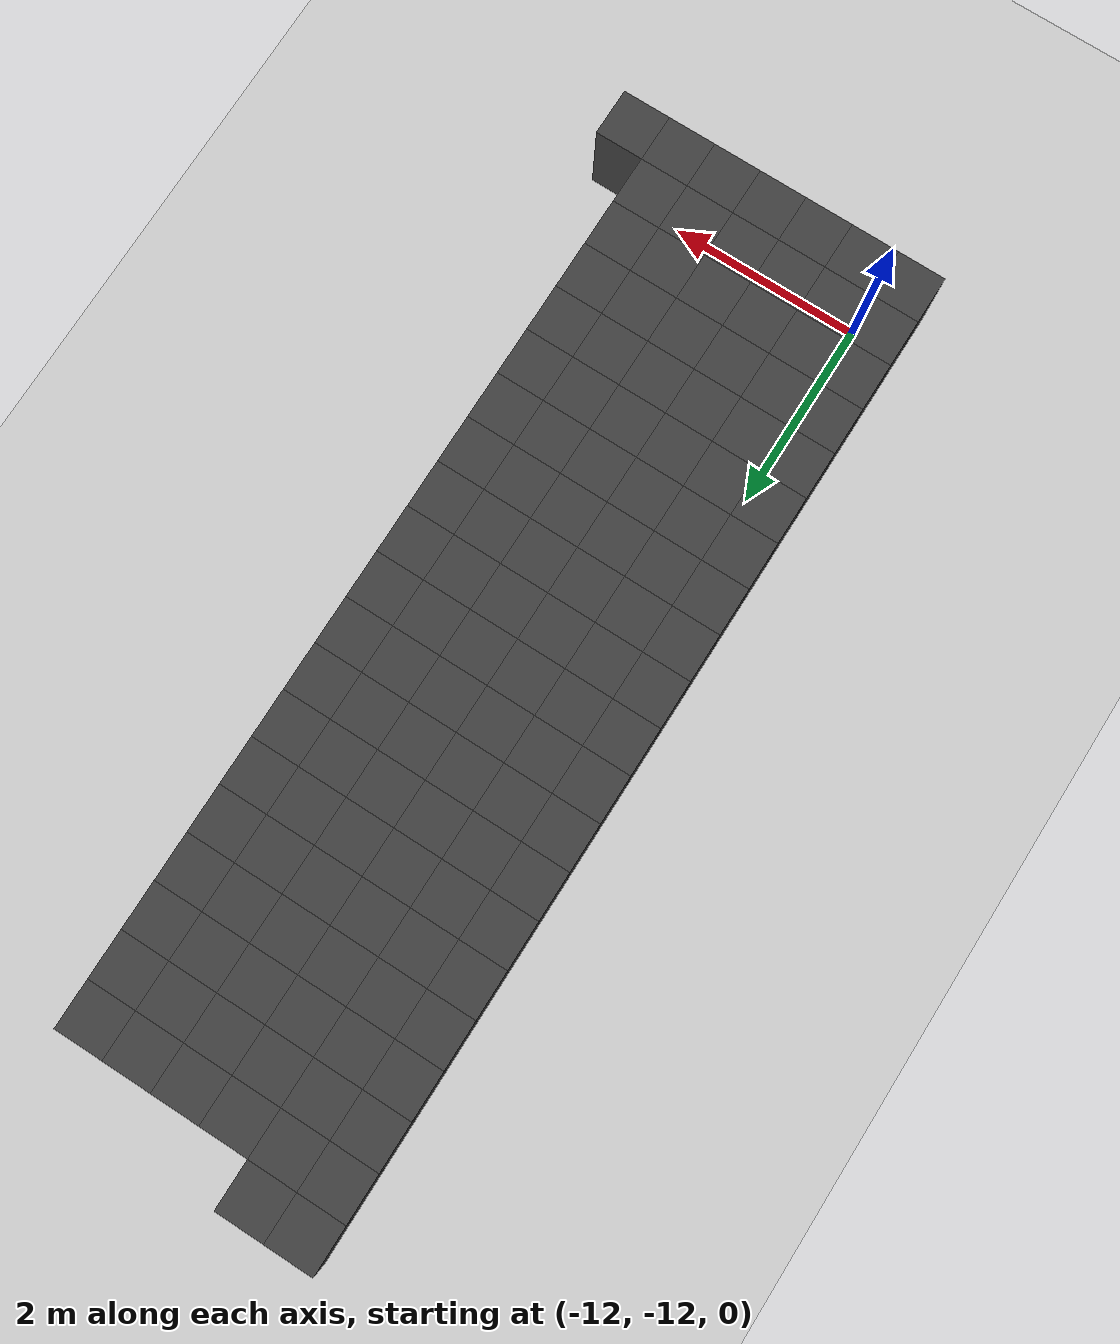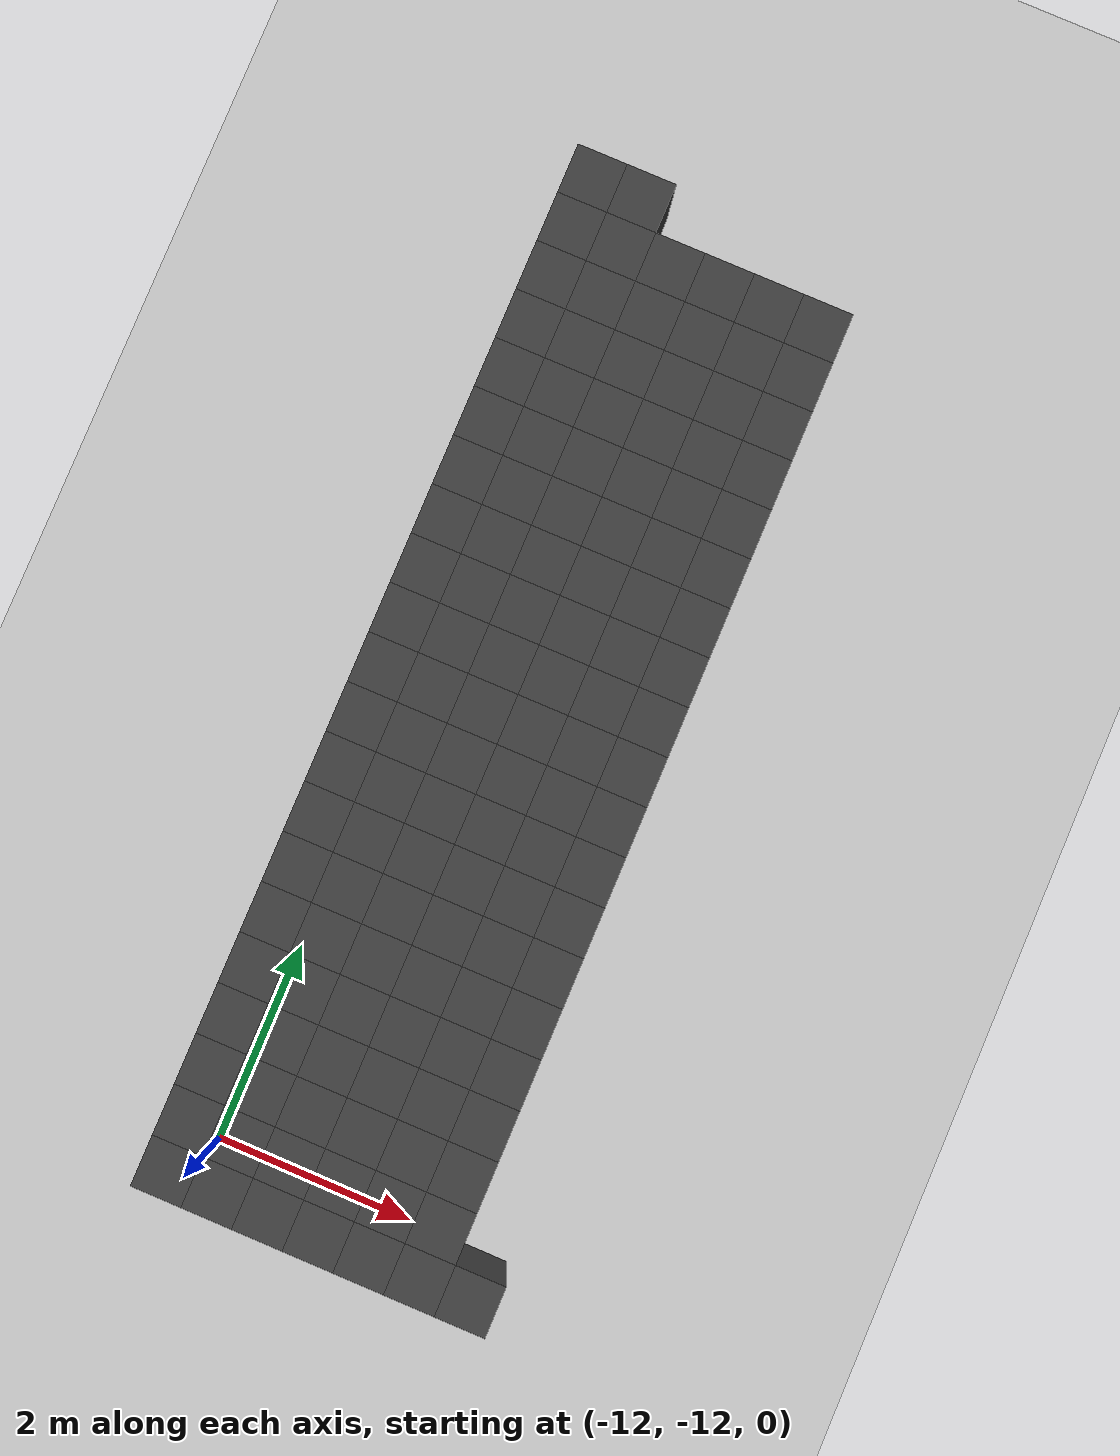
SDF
<sdf version="1.7">
 <world name="map_13364">
  <model name="ground_plane">
   <static>true</static>
   <link name="link">
    <collision name="collision">
     <geometry><plane><normal>0 0 1</normal><size>200 200</size></plane></geometry>
    </collision>
    <visual name="visual">
     <geometry><plane><normal>0 0 1</normal><size>200 200</size></plane></geometry>
     <material><ambient>0.8 0.8 0.8 1</ambient><diffuse>0.8 0.8 0.8 1</diffuse></material>
    </visual>
   </link>
  </model>
  <model name="maze_environment">
   <static>true</static>
   <link name="wall_1013">
    <pose>-12.250 -2.250 0.500 0 0 0</pose>
    <collision name="col"><geometry><box><size>0.5 0.5 1.0</size></box></geometry></collision>
    <visual name="vis">
     <geometry><box><size>0.5 0.5 1.0</size></box></geometry>
     <material><ambient>0.15 0.15 0.15 1</ambient><diffuse>0.25 0.25 0.25 1</diffuse></material>
    </visual>
   </link>
   <link name="wall_1014">
    <pose>-11.750 -2.250 0.500 0 0 0</pose>
    <collision name="col"><geometry><box><size>0.5 0.5 1.0</size></box></geometry></collision>
    <visual name="vis">
     <geometry><box><size>0.5 0.5 1.0</size></box></geometry>
     <material><ambient>0.15 0.15 0.15 1</ambient><diffuse>0.25 0.25 0.25 1</diffuse></material>
    </visual>
   </link>
   <link name="wall_1044">
    <pose>-12.250 -2.750 0.500 0 0 0</pose>
    <collision name="col"><geometry><box><size>0.5 0.5 1.0</size></box></geometry></collision>
    <visual name="vis">
     <geometry><box><size>0.5 0.5 1.0</size></box></geometry>
     <material><ambient>0.15 0.15 0.15 1</ambient><diffuse>0.25 0.25 0.25 1</diffuse></material>
    </visual>
   </link>
   <link name="wall_1045">
    <pose>-11.750 -2.750 0.500 0 0 0</pose>
    <collision name="col"><geometry><box><size>0.5 0.5 1.0</size></box></geometry></collision>
    <visual name="vis">
     <geometry><box><size>0.5 0.5 1.0</size></box></geometry>
     <material><ambient>0.15 0.15 0.15 1</ambient><diffuse>0.25 0.25 0.25 1</diffuse></material>
    </visual>
   </link>
   <link name="wall_1046">
    <pose>-11.250 -2.750 0.500 0 0 0</pose>
    <collision name="col"><geometry><box><size>0.5 0.5 1.0</size></box></geometry></collision>
    <visual name="vis">
     <geometry><box><size>0.5 0.5 1.0</size></box></geometry>
     <material><ambient>0.15 0.15 0.15 1</ambient><diffuse>0.25 0.25 0.25 1</diffuse></material>
    </visual>
   </link>
   <link name="wall_1047">
    <pose>-10.750 -2.750 0.500 0 0 0</pose>
    <collision name="col"><geometry><box><size>0.5 0.5 1.0</size></box></geometry></collision>
    <visual name="vis">
     <geometry><box><size>0.5 0.5 1.0</size></box></geometry>
     <material><ambient>0.15 0.15 0.15 1</ambient><diffuse>0.25 0.25 0.25 1</diffuse></material>
    </visual>
   </link>
   <link name="wall_1048">
    <pose>-10.250 -2.750 0.500 0 0 0</pose>
    <collision name="col"><geometry><box><size>0.5 0.5 1.0</size></box></geometry></collision>
    <visual name="vis">
     <geometry><box><size>0.5 0.5 1.0</size></box></geometry>
     <material><ambient>0.15 0.15 0.15 1</ambient><diffuse>0.25 0.25 0.25 1</diffuse></material>
    </visual>
   </link>
   <link name="wall_1049">
    <pose>-9.750 -2.750 0.500 0 0 0</pose>
    <collision name="col"><geometry><box><size>0.5 0.5 1.0</size></box></geometry></collision>
    <visual name="vis">
     <geometry><box><size>0.5 0.5 1.0</size></box></geometry>
     <material><ambient>0.15 0.15 0.15 1</ambient><diffuse>0.25 0.25 0.25 1</diffuse></material>
    </visual>
   </link>
   <link name="wall_1084">
    <pose>-12.250 -3.250 0.500 0 0 0</pose>
    <collision name="col"><geometry><box><size>0.5 0.5 1.0</size></box></geometry></collision>
    <visual name="vis">
     <geometry><box><size>0.5 0.5 1.0</size></box></geometry>
     <material><ambient>0.15 0.15 0.15 1</ambient><diffuse>0.25 0.25 0.25 1</diffuse></material>
    </visual>
   </link>
   <link name="wall_1085">
    <pose>-11.750 -3.250 0.500 0 0 0</pose>
    <collision name="col"><geometry><box><size>0.5 0.5 1.0</size></box></geometry></collision>
    <visual name="vis">
     <geometry><box><size>0.5 0.5 1.0</size></box></geometry>
     <material><ambient>0.15 0.15 0.15 1</ambient><diffuse>0.25 0.25 0.25 1</diffuse></material>
    </visual>
   </link>
   <link name="wall_1086">
    <pose>-11.250 -3.250 0.500 0 0 0</pose>
    <collision name="col"><geometry><box><size>0.5 0.5 1.0</size></box></geometry></collision>
    <visual name="vis">
     <geometry><box><size>0.5 0.5 1.0</size></box></geometry>
     <material><ambient>0.15 0.15 0.15 1</ambient><diffuse>0.25 0.25 0.25 1</diffuse></material>
    </visual>
   </link>
   <link name="wall_1087">
    <pose>-10.750 -3.250 0.500 0 0 0</pose>
    <collision name="col"><geometry><box><size>0.5 0.5 1.0</size></box></geometry></collision>
    <visual name="vis">
     <geometry><box><size>0.5 0.5 1.0</size></box></geometry>
     <material><ambient>0.15 0.15 0.15 1</ambient><diffuse>0.25 0.25 0.25 1</diffuse></material>
    </visual>
   </link>
   <link name="wall_1088">
    <pose>-10.250 -3.250 0.500 0 0 0</pose>
    <collision name="col"><geometry><box><size>0.5 0.5 1.0</size></box></geometry></collision>
    <visual name="vis">
     <geometry><box><size>0.5 0.5 1.0</size></box></geometry>
     <material><ambient>0.15 0.15 0.15 1</ambient><diffuse>0.25 0.25 0.25 1</diffuse></material>
    </visual>
   </link>
   <link name="wall_1089">
    <pose>-9.750 -3.250 0.500 0 0 0</pose>
    <collision name="col"><geometry><box><size>0.5 0.5 1.0</size></box></geometry></collision>
    <visual name="vis">
     <geometry><box><size>0.5 0.5 1.0</size></box></geometry>
     <material><ambient>0.15 0.15 0.15 1</ambient><diffuse>0.25 0.25 0.25 1</diffuse></material>
    </visual>
   </link>
   <link name="wall_1124">
    <pose>-12.250 -3.750 0.500 0 0 0</pose>
    <collision name="col"><geometry><box><size>0.5 0.5 1.0</size></box></geometry></collision>
    <visual name="vis">
     <geometry><box><size>0.5 0.5 1.0</size></box></geometry>
     <material><ambient>0.15 0.15 0.15 1</ambient><diffuse>0.25 0.25 0.25 1</diffuse></material>
    </visual>
   </link>
   <link name="wall_1125">
    <pose>-11.750 -3.750 0.500 0 0 0</pose>
    <collision name="col"><geometry><box><size>0.5 0.5 1.0</size></box></geometry></collision>
    <visual name="vis">
     <geometry><box><size>0.5 0.5 1.0</size></box></geometry>
     <material><ambient>0.15 0.15 0.15 1</ambient><diffuse>0.25 0.25 0.25 1</diffuse></material>
    </visual>
   </link>
   <link name="wall_1126">
    <pose>-11.250 -3.750 0.500 0 0 0</pose>
    <collision name="col"><geometry><box><size>0.5 0.5 1.0</size></box></geometry></collision>
    <visual name="vis">
     <geometry><box><size>0.5 0.5 1.0</size></box></geometry>
     <material><ambient>0.15 0.15 0.15 1</ambient><diffuse>0.25 0.25 0.25 1</diffuse></material>
    </visual>
   </link>
   <link name="wall_1127">
    <pose>-10.750 -3.750 0.500 0 0 0</pose>
    <collision name="col"><geometry><box><size>0.5 0.5 1.0</size></box></geometry></collision>
    <visual name="vis">
     <geometry><box><size>0.5 0.5 1.0</size></box></geometry>
     <material><ambient>0.15 0.15 0.15 1</ambient><diffuse>0.25 0.25 0.25 1</diffuse></material>
    </visual>
   </link>
   <link name="wall_1128">
    <pose>-10.250 -3.750 0.500 0 0 0</pose>
    <collision name="col"><geometry><box><size>0.5 0.5 1.0</size></box></geometry></collision>
    <visual name="vis">
     <geometry><box><size>0.5 0.5 1.0</size></box></geometry>
     <material><ambient>0.15 0.15 0.15 1</ambient><diffuse>0.25 0.25 0.25 1</diffuse></material>
    </visual>
   </link>
   <link name="wall_1129">
    <pose>-9.750 -3.750 0.500 0 0 0</pose>
    <collision name="col"><geometry><box><size>0.5 0.5 1.0</size></box></geometry></collision>
    <visual name="vis">
     <geometry><box><size>0.5 0.5 1.0</size></box></geometry>
     <material><ambient>0.15 0.15 0.15 1</ambient><diffuse>0.25 0.25 0.25 1</diffuse></material>
    </visual>
   </link>
   <link name="wall_1159">
    <pose>-12.250 -4.250 0.500 0 0 0</pose>
    <collision name="col"><geometry><box><size>0.5 0.5 1.0</size></box></geometry></collision>
    <visual name="vis">
     <geometry><box><size>0.5 0.5 1.0</size></box></geometry>
     <material><ambient>0.15 0.15 0.15 1</ambient><diffuse>0.25 0.25 0.25 1</diffuse></material>
    </visual>
   </link>
   <link name="wall_1160">
    <pose>-11.750 -4.250 0.500 0 0 0</pose>
    <collision name="col"><geometry><box><size>0.5 0.5 1.0</size></box></geometry></collision>
    <visual name="vis">
     <geometry><box><size>0.5 0.5 1.0</size></box></geometry>
     <material><ambient>0.15 0.15 0.15 1</ambient><diffuse>0.25 0.25 0.25 1</diffuse></material>
    </visual>
   </link>
   <link name="wall_1161">
    <pose>-11.250 -4.250 0.500 0 0 0</pose>
    <collision name="col"><geometry><box><size>0.5 0.5 1.0</size></box></geometry></collision>
    <visual name="vis">
     <geometry><box><size>0.5 0.5 1.0</size></box></geometry>
     <material><ambient>0.15 0.15 0.15 1</ambient><diffuse>0.25 0.25 0.25 1</diffuse></material>
    </visual>
   </link>
   <link name="wall_1162">
    <pose>-10.750 -4.250 0.500 0 0 0</pose>
    <collision name="col"><geometry><box><size>0.5 0.5 1.0</size></box></geometry></collision>
    <visual name="vis">
     <geometry><box><size>0.5 0.5 1.0</size></box></geometry>
     <material><ambient>0.15 0.15 0.15 1</ambient><diffuse>0.25 0.25 0.25 1</diffuse></material>
    </visual>
   </link>
   <link name="wall_1163">
    <pose>-10.250 -4.250 0.500 0 0 0</pose>
    <collision name="col"><geometry><box><size>0.5 0.5 1.0</size></box></geometry></collision>
    <visual name="vis">
     <geometry><box><size>0.5 0.5 1.0</size></box></geometry>
     <material><ambient>0.15 0.15 0.15 1</ambient><diffuse>0.25 0.25 0.25 1</diffuse></material>
    </visual>
   </link>
   <link name="wall_1164">
    <pose>-9.750 -4.250 0.500 0 0 0</pose>
    <collision name="col"><geometry><box><size>0.5 0.5 1.0</size></box></geometry></collision>
    <visual name="vis">
     <geometry><box><size>0.5 0.5 1.0</size></box></geometry>
     <material><ambient>0.15 0.15 0.15 1</ambient><diffuse>0.25 0.25 0.25 1</diffuse></material>
    </visual>
   </link>
   <link name="wall_1202">
    <pose>-12.250 -4.750 0.500 0 0 0</pose>
    <collision name="col"><geometry><box><size>0.5 0.5 1.0</size></box></geometry></collision>
    <visual name="vis">
     <geometry><box><size>0.5 0.5 1.0</size></box></geometry>
     <material><ambient>0.15 0.15 0.15 1</ambient><diffuse>0.25 0.25 0.25 1</diffuse></material>
    </visual>
   </link>
   <link name="wall_1203">
    <pose>-11.750 -4.750 0.500 0 0 0</pose>
    <collision name="col"><geometry><box><size>0.5 0.5 1.0</size></box></geometry></collision>
    <visual name="vis">
     <geometry><box><size>0.5 0.5 1.0</size></box></geometry>
     <material><ambient>0.15 0.15 0.15 1</ambient><diffuse>0.25 0.25 0.25 1</diffuse></material>
    </visual>
   </link>
   <link name="wall_1204">
    <pose>-11.250 -4.750 0.500 0 0 0</pose>
    <collision name="col"><geometry><box><size>0.5 0.5 1.0</size></box></geometry></collision>
    <visual name="vis">
     <geometry><box><size>0.5 0.5 1.0</size></box></geometry>
     <material><ambient>0.15 0.15 0.15 1</ambient><diffuse>0.25 0.25 0.25 1</diffuse></material>
    </visual>
   </link>
   <link name="wall_1205">
    <pose>-10.750 -4.750 0.500 0 0 0</pose>
    <collision name="col"><geometry><box><size>0.5 0.5 1.0</size></box></geometry></collision>
    <visual name="vis">
     <geometry><box><size>0.5 0.5 1.0</size></box></geometry>
     <material><ambient>0.15 0.15 0.15 1</ambient><diffuse>0.25 0.25 0.25 1</diffuse></material>
    </visual>
   </link>
   <link name="wall_1206">
    <pose>-10.250 -4.750 0.500 0 0 0</pose>
    <collision name="col"><geometry><box><size>0.5 0.5 1.0</size></box></geometry></collision>
    <visual name="vis">
     <geometry><box><size>0.5 0.5 1.0</size></box></geometry>
     <material><ambient>0.15 0.15 0.15 1</ambient><diffuse>0.25 0.25 0.25 1</diffuse></material>
    </visual>
   </link>
   <link name="wall_1207">
    <pose>-9.750 -4.750 0.500 0 0 0</pose>
    <collision name="col"><geometry><box><size>0.5 0.5 1.0</size></box></geometry></collision>
    <visual name="vis">
     <geometry><box><size>0.5 0.5 1.0</size></box></geometry>
     <material><ambient>0.15 0.15 0.15 1</ambient><diffuse>0.25 0.25 0.25 1</diffuse></material>
    </visual>
   </link>
   <link name="wall_1245">
    <pose>-12.250 -5.250 0.500 0 0 0</pose>
    <collision name="col"><geometry><box><size>0.5 0.5 1.0</size></box></geometry></collision>
    <visual name="vis">
     <geometry><box><size>0.5 0.5 1.0</size></box></geometry>
     <material><ambient>0.15 0.15 0.15 1</ambient><diffuse>0.25 0.25 0.25 1</diffuse></material>
    </visual>
   </link>
   <link name="wall_1246">
    <pose>-11.750 -5.250 0.500 0 0 0</pose>
    <collision name="col"><geometry><box><size>0.5 0.5 1.0</size></box></geometry></collision>
    <visual name="vis">
     <geometry><box><size>0.5 0.5 1.0</size></box></geometry>
     <material><ambient>0.15 0.15 0.15 1</ambient><diffuse>0.25 0.25 0.25 1</diffuse></material>
    </visual>
   </link>
   <link name="wall_1247">
    <pose>-11.250 -5.250 0.500 0 0 0</pose>
    <collision name="col"><geometry><box><size>0.5 0.5 1.0</size></box></geometry></collision>
    <visual name="vis">
     <geometry><box><size>0.5 0.5 1.0</size></box></geometry>
     <material><ambient>0.15 0.15 0.15 1</ambient><diffuse>0.25 0.25 0.25 1</diffuse></material>
    </visual>
   </link>
   <link name="wall_1248">
    <pose>-10.750 -5.250 0.500 0 0 0</pose>
    <collision name="col"><geometry><box><size>0.5 0.5 1.0</size></box></geometry></collision>
    <visual name="vis">
     <geometry><box><size>0.5 0.5 1.0</size></box></geometry>
     <material><ambient>0.15 0.15 0.15 1</ambient><diffuse>0.25 0.25 0.25 1</diffuse></material>
    </visual>
   </link>
   <link name="wall_1249">
    <pose>-10.250 -5.250 0.500 0 0 0</pose>
    <collision name="col"><geometry><box><size>0.5 0.5 1.0</size></box></geometry></collision>
    <visual name="vis">
     <geometry><box><size>0.5 0.5 1.0</size></box></geometry>
     <material><ambient>0.15 0.15 0.15 1</ambient><diffuse>0.25 0.25 0.25 1</diffuse></material>
    </visual>
   </link>
   <link name="wall_1250">
    <pose>-9.750 -5.250 0.500 0 0 0</pose>
    <collision name="col"><geometry><box><size>0.5 0.5 1.0</size></box></geometry></collision>
    <visual name="vis">
     <geometry><box><size>0.5 0.5 1.0</size></box></geometry>
     <material><ambient>0.15 0.15 0.15 1</ambient><diffuse>0.25 0.25 0.25 1</diffuse></material>
    </visual>
   </link>
   <link name="wall_1288">
    <pose>-12.250 -5.750 0.500 0 0 0</pose>
    <collision name="col"><geometry><box><size>0.5 0.5 1.0</size></box></geometry></collision>
    <visual name="vis">
     <geometry><box><size>0.5 0.5 1.0</size></box></geometry>
     <material><ambient>0.15 0.15 0.15 1</ambient><diffuse>0.25 0.25 0.25 1</diffuse></material>
    </visual>
   </link>
   <link name="wall_1289">
    <pose>-11.750 -5.750 0.500 0 0 0</pose>
    <collision name="col"><geometry><box><size>0.5 0.5 1.0</size></box></geometry></collision>
    <visual name="vis">
     <geometry><box><size>0.5 0.5 1.0</size></box></geometry>
     <material><ambient>0.15 0.15 0.15 1</ambient><diffuse>0.25 0.25 0.25 1</diffuse></material>
    </visual>
   </link>
   <link name="wall_1290">
    <pose>-11.250 -5.750 0.500 0 0 0</pose>
    <collision name="col"><geometry><box><size>0.5 0.5 1.0</size></box></geometry></collision>
    <visual name="vis">
     <geometry><box><size>0.5 0.5 1.0</size></box></geometry>
     <material><ambient>0.15 0.15 0.15 1</ambient><diffuse>0.25 0.25 0.25 1</diffuse></material>
    </visual>
   </link>
   <link name="wall_1291">
    <pose>-10.750 -5.750 0.500 0 0 0</pose>
    <collision name="col"><geometry><box><size>0.5 0.5 1.0</size></box></geometry></collision>
    <visual name="vis">
     <geometry><box><size>0.5 0.5 1.0</size></box></geometry>
     <material><ambient>0.15 0.15 0.15 1</ambient><diffuse>0.25 0.25 0.25 1</diffuse></material>
    </visual>
   </link>
   <link name="wall_1292">
    <pose>-10.250 -5.750 0.500 0 0 0</pose>
    <collision name="col"><geometry><box><size>0.5 0.5 1.0</size></box></geometry></collision>
    <visual name="vis">
     <geometry><box><size>0.5 0.5 1.0</size></box></geometry>
     <material><ambient>0.15 0.15 0.15 1</ambient><diffuse>0.25 0.25 0.25 1</diffuse></material>
    </visual>
   </link>
   <link name="wall_1293">
    <pose>-9.750 -5.750 0.500 0 0 0</pose>
    <collision name="col"><geometry><box><size>0.5 0.5 1.0</size></box></geometry></collision>
    <visual name="vis">
     <geometry><box><size>0.5 0.5 1.0</size></box></geometry>
     <material><ambient>0.15 0.15 0.15 1</ambient><diffuse>0.25 0.25 0.25 1</diffuse></material>
    </visual>
   </link>
   <link name="wall_1331">
    <pose>-12.250 -6.250 0.500 0 0 0</pose>
    <collision name="col"><geometry><box><size>0.5 0.5 1.0</size></box></geometry></collision>
    <visual name="vis">
     <geometry><box><size>0.5 0.5 1.0</size></box></geometry>
     <material><ambient>0.15 0.15 0.15 1</ambient><diffuse>0.25 0.25 0.25 1</diffuse></material>
    </visual>
   </link>
   <link name="wall_1332">
    <pose>-11.750 -6.250 0.500 0 0 0</pose>
    <collision name="col"><geometry><box><size>0.5 0.5 1.0</size></box></geometry></collision>
    <visual name="vis">
     <geometry><box><size>0.5 0.5 1.0</size></box></geometry>
     <material><ambient>0.15 0.15 0.15 1</ambient><diffuse>0.25 0.25 0.25 1</diffuse></material>
    </visual>
   </link>
   <link name="wall_1333">
    <pose>-11.250 -6.250 0.500 0 0 0</pose>
    <collision name="col"><geometry><box><size>0.5 0.5 1.0</size></box></geometry></collision>
    <visual name="vis">
     <geometry><box><size>0.5 0.5 1.0</size></box></geometry>
     <material><ambient>0.15 0.15 0.15 1</ambient><diffuse>0.25 0.25 0.25 1</diffuse></material>
    </visual>
   </link>
   <link name="wall_1334">
    <pose>-10.750 -6.250 0.500 0 0 0</pose>
    <collision name="col"><geometry><box><size>0.5 0.5 1.0</size></box></geometry></collision>
    <visual name="vis">
     <geometry><box><size>0.5 0.5 1.0</size></box></geometry>
     <material><ambient>0.15 0.15 0.15 1</ambient><diffuse>0.25 0.25 0.25 1</diffuse></material>
    </visual>
   </link>
   <link name="wall_1335">
    <pose>-10.250 -6.250 0.500 0 0 0</pose>
    <collision name="col"><geometry><box><size>0.5 0.5 1.0</size></box></geometry></collision>
    <visual name="vis">
     <geometry><box><size>0.5 0.5 1.0</size></box></geometry>
     <material><ambient>0.15 0.15 0.15 1</ambient><diffuse>0.25 0.25 0.25 1</diffuse></material>
    </visual>
   </link>
   <link name="wall_1336">
    <pose>-9.750 -6.250 0.500 0 0 0</pose>
    <collision name="col"><geometry><box><size>0.5 0.5 1.0</size></box></geometry></collision>
    <visual name="vis">
     <geometry><box><size>0.5 0.5 1.0</size></box></geometry>
     <material><ambient>0.15 0.15 0.15 1</ambient><diffuse>0.25 0.25 0.25 1</diffuse></material>
    </visual>
   </link>
   <link name="wall_1368">
    <pose>-12.250 -6.750 0.500 0 0 0</pose>
    <collision name="col"><geometry><box><size>0.5 0.5 1.0</size></box></geometry></collision>
    <visual name="vis">
     <geometry><box><size>0.5 0.5 1.0</size></box></geometry>
     <material><ambient>0.15 0.15 0.15 1</ambient><diffuse>0.25 0.25 0.25 1</diffuse></material>
    </visual>
   </link>
   <link name="wall_1369">
    <pose>-11.750 -6.750 0.500 0 0 0</pose>
    <collision name="col"><geometry><box><size>0.5 0.5 1.0</size></box></geometry></collision>
    <visual name="vis">
     <geometry><box><size>0.5 0.5 1.0</size></box></geometry>
     <material><ambient>0.15 0.15 0.15 1</ambient><diffuse>0.25 0.25 0.25 1</diffuse></material>
    </visual>
   </link>
   <link name="wall_1370">
    <pose>-11.250 -6.750 0.500 0 0 0</pose>
    <collision name="col"><geometry><box><size>0.5 0.5 1.0</size></box></geometry></collision>
    <visual name="vis">
     <geometry><box><size>0.5 0.5 1.0</size></box></geometry>
     <material><ambient>0.15 0.15 0.15 1</ambient><diffuse>0.25 0.25 0.25 1</diffuse></material>
    </visual>
   </link>
   <link name="wall_1371">
    <pose>-10.750 -6.750 0.500 0 0 0</pose>
    <collision name="col"><geometry><box><size>0.5 0.5 1.0</size></box></geometry></collision>
    <visual name="vis">
     <geometry><box><size>0.5 0.5 1.0</size></box></geometry>
     <material><ambient>0.15 0.15 0.15 1</ambient><diffuse>0.25 0.25 0.25 1</diffuse></material>
    </visual>
   </link>
   <link name="wall_1372">
    <pose>-10.250 -6.750 0.500 0 0 0</pose>
    <collision name="col"><geometry><box><size>0.5 0.5 1.0</size></box></geometry></collision>
    <visual name="vis">
     <geometry><box><size>0.5 0.5 1.0</size></box></geometry>
     <material><ambient>0.15 0.15 0.15 1</ambient><diffuse>0.25 0.25 0.25 1</diffuse></material>
    </visual>
   </link>
   <link name="wall_1373">
    <pose>-9.750 -6.750 0.500 0 0 0</pose>
    <collision name="col"><geometry><box><size>0.5 0.5 1.0</size></box></geometry></collision>
    <visual name="vis">
     <geometry><box><size>0.5 0.5 1.0</size></box></geometry>
     <material><ambient>0.15 0.15 0.15 1</ambient><diffuse>0.25 0.25 0.25 1</diffuse></material>
    </visual>
   </link>
   <link name="wall_1405">
    <pose>-12.250 -7.250 0.500 0 0 0</pose>
    <collision name="col"><geometry><box><size>0.5 0.5 1.0</size></box></geometry></collision>
    <visual name="vis">
     <geometry><box><size>0.5 0.5 1.0</size></box></geometry>
     <material><ambient>0.15 0.15 0.15 1</ambient><diffuse>0.25 0.25 0.25 1</diffuse></material>
    </visual>
   </link>
   <link name="wall_1406">
    <pose>-11.750 -7.250 0.500 0 0 0</pose>
    <collision name="col"><geometry><box><size>0.5 0.5 1.0</size></box></geometry></collision>
    <visual name="vis">
     <geometry><box><size>0.5 0.5 1.0</size></box></geometry>
     <material><ambient>0.15 0.15 0.15 1</ambient><diffuse>0.25 0.25 0.25 1</diffuse></material>
    </visual>
   </link>
   <link name="wall_1407">
    <pose>-11.250 -7.250 0.500 0 0 0</pose>
    <collision name="col"><geometry><box><size>0.5 0.5 1.0</size></box></geometry></collision>
    <visual name="vis">
     <geometry><box><size>0.5 0.5 1.0</size></box></geometry>
     <material><ambient>0.15 0.15 0.15 1</ambient><diffuse>0.25 0.25 0.25 1</diffuse></material>
    </visual>
   </link>
   <link name="wall_1408">
    <pose>-10.750 -7.250 0.500 0 0 0</pose>
    <collision name="col"><geometry><box><size>0.5 0.5 1.0</size></box></geometry></collision>
    <visual name="vis">
     <geometry><box><size>0.5 0.5 1.0</size></box></geometry>
     <material><ambient>0.15 0.15 0.15 1</ambient><diffuse>0.25 0.25 0.25 1</diffuse></material>
    </visual>
   </link>
   <link name="wall_1409">
    <pose>-10.250 -7.250 0.500 0 0 0</pose>
    <collision name="col"><geometry><box><size>0.5 0.5 1.0</size></box></geometry></collision>
    <visual name="vis">
     <geometry><box><size>0.5 0.5 1.0</size></box></geometry>
     <material><ambient>0.15 0.15 0.15 1</ambient><diffuse>0.25 0.25 0.25 1</diffuse></material>
    </visual>
   </link>
   <link name="wall_1410">
    <pose>-9.750 -7.250 0.500 0 0 0</pose>
    <collision name="col"><geometry><box><size>0.5 0.5 1.0</size></box></geometry></collision>
    <visual name="vis">
     <geometry><box><size>0.5 0.5 1.0</size></box></geometry>
     <material><ambient>0.15 0.15 0.15 1</ambient><diffuse>0.25 0.25 0.25 1</diffuse></material>
    </visual>
   </link>
   <link name="wall_1442">
    <pose>-12.250 -7.750 0.500 0 0 0</pose>
    <collision name="col"><geometry><box><size>0.5 0.5 1.0</size></box></geometry></collision>
    <visual name="vis">
     <geometry><box><size>0.5 0.5 1.0</size></box></geometry>
     <material><ambient>0.15 0.15 0.15 1</ambient><diffuse>0.25 0.25 0.25 1</diffuse></material>
    </visual>
   </link>
   <link name="wall_1443">
    <pose>-11.750 -7.750 0.500 0 0 0</pose>
    <collision name="col"><geometry><box><size>0.5 0.5 1.0</size></box></geometry></collision>
    <visual name="vis">
     <geometry><box><size>0.5 0.5 1.0</size></box></geometry>
     <material><ambient>0.15 0.15 0.15 1</ambient><diffuse>0.25 0.25 0.25 1</diffuse></material>
    </visual>
   </link>
   <link name="wall_1444">
    <pose>-11.250 -7.750 0.500 0 0 0</pose>
    <collision name="col"><geometry><box><size>0.5 0.5 1.0</size></box></geometry></collision>
    <visual name="vis">
     <geometry><box><size>0.5 0.5 1.0</size></box></geometry>
     <material><ambient>0.15 0.15 0.15 1</ambient><diffuse>0.25 0.25 0.25 1</diffuse></material>
    </visual>
   </link>
   <link name="wall_1445">
    <pose>-10.750 -7.750 0.500 0 0 0</pose>
    <collision name="col"><geometry><box><size>0.5 0.5 1.0</size></box></geometry></collision>
    <visual name="vis">
     <geometry><box><size>0.5 0.5 1.0</size></box></geometry>
     <material><ambient>0.15 0.15 0.15 1</ambient><diffuse>0.25 0.25 0.25 1</diffuse></material>
    </visual>
   </link>
   <link name="wall_1446">
    <pose>-10.250 -7.750 0.500 0 0 0</pose>
    <collision name="col"><geometry><box><size>0.5 0.5 1.0</size></box></geometry></collision>
    <visual name="vis">
     <geometry><box><size>0.5 0.5 1.0</size></box></geometry>
     <material><ambient>0.15 0.15 0.15 1</ambient><diffuse>0.25 0.25 0.25 1</diffuse></material>
    </visual>
   </link>
   <link name="wall_1447">
    <pose>-9.750 -7.750 0.500 0 0 0</pose>
    <collision name="col"><geometry><box><size>0.5 0.5 1.0</size></box></geometry></collision>
    <visual name="vis">
     <geometry><box><size>0.5 0.5 1.0</size></box></geometry>
     <material><ambient>0.15 0.15 0.15 1</ambient><diffuse>0.25 0.25 0.25 1</diffuse></material>
    </visual>
   </link>
   <link name="wall_1479">
    <pose>-12.250 -8.250 0.500 0 0 0</pose>
    <collision name="col"><geometry><box><size>0.5 0.5 1.0</size></box></geometry></collision>
    <visual name="vis">
     <geometry><box><size>0.5 0.5 1.0</size></box></geometry>
     <material><ambient>0.15 0.15 0.15 1</ambient><diffuse>0.25 0.25 0.25 1</diffuse></material>
    </visual>
   </link>
   <link name="wall_1480">
    <pose>-11.750 -8.250 0.500 0 0 0</pose>
    <collision name="col"><geometry><box><size>0.5 0.5 1.0</size></box></geometry></collision>
    <visual name="vis">
     <geometry><box><size>0.5 0.5 1.0</size></box></geometry>
     <material><ambient>0.15 0.15 0.15 1</ambient><diffuse>0.25 0.25 0.25 1</diffuse></material>
    </visual>
   </link>
   <link name="wall_1481">
    <pose>-11.250 -8.250 0.500 0 0 0</pose>
    <collision name="col"><geometry><box><size>0.5 0.5 1.0</size></box></geometry></collision>
    <visual name="vis">
     <geometry><box><size>0.5 0.5 1.0</size></box></geometry>
     <material><ambient>0.15 0.15 0.15 1</ambient><diffuse>0.25 0.25 0.25 1</diffuse></material>
    </visual>
   </link>
   <link name="wall_1482">
    <pose>-10.750 -8.250 0.500 0 0 0</pose>
    <collision name="col"><geometry><box><size>0.5 0.5 1.0</size></box></geometry></collision>
    <visual name="vis">
     <geometry><box><size>0.5 0.5 1.0</size></box></geometry>
     <material><ambient>0.15 0.15 0.15 1</ambient><diffuse>0.25 0.25 0.25 1</diffuse></material>
    </visual>
   </link>
   <link name="wall_1483">
    <pose>-10.250 -8.250 0.500 0 0 0</pose>
    <collision name="col"><geometry><box><size>0.5 0.5 1.0</size></box></geometry></collision>
    <visual name="vis">
     <geometry><box><size>0.5 0.5 1.0</size></box></geometry>
     <material><ambient>0.15 0.15 0.15 1</ambient><diffuse>0.25 0.25 0.25 1</diffuse></material>
    </visual>
   </link>
   <link name="wall_1484">
    <pose>-9.750 -8.250 0.500 0 0 0</pose>
    <collision name="col"><geometry><box><size>0.5 0.5 1.0</size></box></geometry></collision>
    <visual name="vis">
     <geometry><box><size>0.5 0.5 1.0</size></box></geometry>
     <material><ambient>0.15 0.15 0.15 1</ambient><diffuse>0.25 0.25 0.25 1</diffuse></material>
    </visual>
   </link>
   <link name="wall_1516">
    <pose>-12.250 -8.750 0.500 0 0 0</pose>
    <collision name="col"><geometry><box><size>0.5 0.5 1.0</size></box></geometry></collision>
    <visual name="vis">
     <geometry><box><size>0.5 0.5 1.0</size></box></geometry>
     <material><ambient>0.15 0.15 0.15 1</ambient><diffuse>0.25 0.25 0.25 1</diffuse></material>
    </visual>
   </link>
   <link name="wall_1517">
    <pose>-11.750 -8.750 0.500 0 0 0</pose>
    <collision name="col"><geometry><box><size>0.5 0.5 1.0</size></box></geometry></collision>
    <visual name="vis">
     <geometry><box><size>0.5 0.5 1.0</size></box></geometry>
     <material><ambient>0.15 0.15 0.15 1</ambient><diffuse>0.25 0.25 0.25 1</diffuse></material>
    </visual>
   </link>
   <link name="wall_1518">
    <pose>-11.250 -8.750 0.500 0 0 0</pose>
    <collision name="col"><geometry><box><size>0.5 0.5 1.0</size></box></geometry></collision>
    <visual name="vis">
     <geometry><box><size>0.5 0.5 1.0</size></box></geometry>
     <material><ambient>0.15 0.15 0.15 1</ambient><diffuse>0.25 0.25 0.25 1</diffuse></material>
    </visual>
   </link>
   <link name="wall_1519">
    <pose>-10.750 -8.750 0.500 0 0 0</pose>
    <collision name="col"><geometry><box><size>0.5 0.5 1.0</size></box></geometry></collision>
    <visual name="vis">
     <geometry><box><size>0.5 0.5 1.0</size></box></geometry>
     <material><ambient>0.15 0.15 0.15 1</ambient><diffuse>0.25 0.25 0.25 1</diffuse></material>
    </visual>
   </link>
   <link name="wall_1520">
    <pose>-10.250 -8.750 0.500 0 0 0</pose>
    <collision name="col"><geometry><box><size>0.5 0.5 1.0</size></box></geometry></collision>
    <visual name="vis">
     <geometry><box><size>0.5 0.5 1.0</size></box></geometry>
     <material><ambient>0.15 0.15 0.15 1</ambient><diffuse>0.25 0.25 0.25 1</diffuse></material>
    </visual>
   </link>
   <link name="wall_1521">
    <pose>-9.750 -8.750 0.500 0 0 0</pose>
    <collision name="col"><geometry><box><size>0.5 0.5 1.0</size></box></geometry></collision>
    <visual name="vis">
     <geometry><box><size>0.5 0.5 1.0</size></box></geometry>
     <material><ambient>0.15 0.15 0.15 1</ambient><diffuse>0.25 0.25 0.25 1</diffuse></material>
    </visual>
   </link>
   <link name="wall_1553">
    <pose>-12.250 -9.250 0.500 0 0 0</pose>
    <collision name="col"><geometry><box><size>0.5 0.5 1.0</size></box></geometry></collision>
    <visual name="vis">
     <geometry><box><size>0.5 0.5 1.0</size></box></geometry>
     <material><ambient>0.15 0.15 0.15 1</ambient><diffuse>0.25 0.25 0.25 1</diffuse></material>
    </visual>
   </link>
   <link name="wall_1554">
    <pose>-11.750 -9.250 0.500 0 0 0</pose>
    <collision name="col"><geometry><box><size>0.5 0.5 1.0</size></box></geometry></collision>
    <visual name="vis">
     <geometry><box><size>0.5 0.5 1.0</size></box></geometry>
     <material><ambient>0.15 0.15 0.15 1</ambient><diffuse>0.25 0.25 0.25 1</diffuse></material>
    </visual>
   </link>
   <link name="wall_1555">
    <pose>-11.250 -9.250 0.500 0 0 0</pose>
    <collision name="col"><geometry><box><size>0.5 0.5 1.0</size></box></geometry></collision>
    <visual name="vis">
     <geometry><box><size>0.5 0.5 1.0</size></box></geometry>
     <material><ambient>0.15 0.15 0.15 1</ambient><diffuse>0.25 0.25 0.25 1</diffuse></material>
    </visual>
   </link>
   <link name="wall_1556">
    <pose>-10.750 -9.250 0.500 0 0 0</pose>
    <collision name="col"><geometry><box><size>0.5 0.5 1.0</size></box></geometry></collision>
    <visual name="vis">
     <geometry><box><size>0.5 0.5 1.0</size></box></geometry>
     <material><ambient>0.15 0.15 0.15 1</ambient><diffuse>0.25 0.25 0.25 1</diffuse></material>
    </visual>
   </link>
   <link name="wall_1557">
    <pose>-10.250 -9.250 0.500 0 0 0</pose>
    <collision name="col"><geometry><box><size>0.5 0.5 1.0</size></box></geometry></collision>
    <visual name="vis">
     <geometry><box><size>0.5 0.5 1.0</size></box></geometry>
     <material><ambient>0.15 0.15 0.15 1</ambient><diffuse>0.25 0.25 0.25 1</diffuse></material>
    </visual>
   </link>
   <link name="wall_1558">
    <pose>-9.750 -9.250 0.500 0 0 0</pose>
    <collision name="col"><geometry><box><size>0.5 0.5 1.0</size></box></geometry></collision>
    <visual name="vis">
     <geometry><box><size>0.5 0.5 1.0</size></box></geometry>
     <material><ambient>0.15 0.15 0.15 1</ambient><diffuse>0.25 0.25 0.25 1</diffuse></material>
    </visual>
   </link>
   <link name="wall_1596">
    <pose>-12.250 -9.750 0.500 0 0 0</pose>
    <collision name="col"><geometry><box><size>0.5 0.5 1.0</size></box></geometry></collision>
    <visual name="vis">
     <geometry><box><size>0.5 0.5 1.0</size></box></geometry>
     <material><ambient>0.15 0.15 0.15 1</ambient><diffuse>0.25 0.25 0.25 1</diffuse></material>
    </visual>
   </link>
   <link name="wall_1597">
    <pose>-11.750 -9.750 0.500 0 0 0</pose>
    <collision name="col"><geometry><box><size>0.5 0.5 1.0</size></box></geometry></collision>
    <visual name="vis">
     <geometry><box><size>0.5 0.5 1.0</size></box></geometry>
     <material><ambient>0.15 0.15 0.15 1</ambient><diffuse>0.25 0.25 0.25 1</diffuse></material>
    </visual>
   </link>
   <link name="wall_1598">
    <pose>-11.250 -9.750 0.500 0 0 0</pose>
    <collision name="col"><geometry><box><size>0.5 0.5 1.0</size></box></geometry></collision>
    <visual name="vis">
     <geometry><box><size>0.5 0.5 1.0</size></box></geometry>
     <material><ambient>0.15 0.15 0.15 1</ambient><diffuse>0.25 0.25 0.25 1</diffuse></material>
    </visual>
   </link>
   <link name="wall_1599">
    <pose>-10.750 -9.750 0.500 0 0 0</pose>
    <collision name="col"><geometry><box><size>0.5 0.5 1.0</size></box></geometry></collision>
    <visual name="vis">
     <geometry><box><size>0.5 0.5 1.0</size></box></geometry>
     <material><ambient>0.15 0.15 0.15 1</ambient><diffuse>0.25 0.25 0.25 1</diffuse></material>
    </visual>
   </link>
   <link name="wall_1600">
    <pose>-10.250 -9.750 0.500 0 0 0</pose>
    <collision name="col"><geometry><box><size>0.5 0.5 1.0</size></box></geometry></collision>
    <visual name="vis">
     <geometry><box><size>0.5 0.5 1.0</size></box></geometry>
     <material><ambient>0.15 0.15 0.15 1</ambient><diffuse>0.25 0.25 0.25 1</diffuse></material>
    </visual>
   </link>
   <link name="wall_1601">
    <pose>-9.750 -9.750 0.500 0 0 0</pose>
    <collision name="col"><geometry><box><size>0.5 0.5 1.0</size></box></geometry></collision>
    <visual name="vis">
     <geometry><box><size>0.5 0.5 1.0</size></box></geometry>
     <material><ambient>0.15 0.15 0.15 1</ambient><diffuse>0.25 0.25 0.25 1</diffuse></material>
    </visual>
   </link>
   <link name="wall_1639">
    <pose>-12.250 -10.250 0.500 0 0 0</pose>
    <collision name="col"><geometry><box><size>0.5 0.5 1.0</size></box></geometry></collision>
    <visual name="vis">
     <geometry><box><size>0.5 0.5 1.0</size></box></geometry>
     <material><ambient>0.15 0.15 0.15 1</ambient><diffuse>0.25 0.25 0.25 1</diffuse></material>
    </visual>
   </link>
   <link name="wall_1640">
    <pose>-11.750 -10.250 0.500 0 0 0</pose>
    <collision name="col"><geometry><box><size>0.5 0.5 1.0</size></box></geometry></collision>
    <visual name="vis">
     <geometry><box><size>0.5 0.5 1.0</size></box></geometry>
     <material><ambient>0.15 0.15 0.15 1</ambient><diffuse>0.25 0.25 0.25 1</diffuse></material>
    </visual>
   </link>
   <link name="wall_1641">
    <pose>-11.250 -10.250 0.500 0 0 0</pose>
    <collision name="col"><geometry><box><size>0.5 0.5 1.0</size></box></geometry></collision>
    <visual name="vis">
     <geometry><box><size>0.5 0.5 1.0</size></box></geometry>
     <material><ambient>0.15 0.15 0.15 1</ambient><diffuse>0.25 0.25 0.25 1</diffuse></material>
    </visual>
   </link>
   <link name="wall_1642">
    <pose>-10.750 -10.250 0.500 0 0 0</pose>
    <collision name="col"><geometry><box><size>0.5 0.5 1.0</size></box></geometry></collision>
    <visual name="vis">
     <geometry><box><size>0.5 0.5 1.0</size></box></geometry>
     <material><ambient>0.15 0.15 0.15 1</ambient><diffuse>0.25 0.25 0.25 1</diffuse></material>
    </visual>
   </link>
   <link name="wall_1643">
    <pose>-10.250 -10.250 0.500 0 0 0</pose>
    <collision name="col"><geometry><box><size>0.5 0.5 1.0</size></box></geometry></collision>
    <visual name="vis">
     <geometry><box><size>0.5 0.5 1.0</size></box></geometry>
     <material><ambient>0.15 0.15 0.15 1</ambient><diffuse>0.25 0.25 0.25 1</diffuse></material>
    </visual>
   </link>
   <link name="wall_1644">
    <pose>-9.750 -10.250 0.500 0 0 0</pose>
    <collision name="col"><geometry><box><size>0.5 0.5 1.0</size></box></geometry></collision>
    <visual name="vis">
     <geometry><box><size>0.5 0.5 1.0</size></box></geometry>
     <material><ambient>0.15 0.15 0.15 1</ambient><diffuse>0.25 0.25 0.25 1</diffuse></material>
    </visual>
   </link>
   <link name="wall_1682">
    <pose>-12.250 -10.750 0.500 0 0 0</pose>
    <collision name="col"><geometry><box><size>0.5 0.5 1.0</size></box></geometry></collision>
    <visual name="vis">
     <geometry><box><size>0.5 0.5 1.0</size></box></geometry>
     <material><ambient>0.15 0.15 0.15 1</ambient><diffuse>0.25 0.25 0.25 1</diffuse></material>
    </visual>
   </link>
   <link name="wall_1683">
    <pose>-11.750 -10.750 0.500 0 0 0</pose>
    <collision name="col"><geometry><box><size>0.5 0.5 1.0</size></box></geometry></collision>
    <visual name="vis">
     <geometry><box><size>0.5 0.5 1.0</size></box></geometry>
     <material><ambient>0.15 0.15 0.15 1</ambient><diffuse>0.25 0.25 0.25 1</diffuse></material>
    </visual>
   </link>
   <link name="wall_1684">
    <pose>-11.250 -10.750 0.500 0 0 0</pose>
    <collision name="col"><geometry><box><size>0.5 0.5 1.0</size></box></geometry></collision>
    <visual name="vis">
     <geometry><box><size>0.5 0.5 1.0</size></box></geometry>
     <material><ambient>0.15 0.15 0.15 1</ambient><diffuse>0.25 0.25 0.25 1</diffuse></material>
    </visual>
   </link>
   <link name="wall_1685">
    <pose>-10.750 -10.750 0.500 0 0 0</pose>
    <collision name="col"><geometry><box><size>0.5 0.5 1.0</size></box></geometry></collision>
    <visual name="vis">
     <geometry><box><size>0.5 0.5 1.0</size></box></geometry>
     <material><ambient>0.15 0.15 0.15 1</ambient><diffuse>0.25 0.25 0.25 1</diffuse></material>
    </visual>
   </link>
   <link name="wall_1686">
    <pose>-10.250 -10.750 0.500 0 0 0</pose>
    <collision name="col"><geometry><box><size>0.5 0.5 1.0</size></box></geometry></collision>
    <visual name="vis">
     <geometry><box><size>0.5 0.5 1.0</size></box></geometry>
     <material><ambient>0.15 0.15 0.15 1</ambient><diffuse>0.25 0.25 0.25 1</diffuse></material>
    </visual>
   </link>
   <link name="wall_1687">
    <pose>-9.750 -10.750 0.500 0 0 0</pose>
    <collision name="col"><geometry><box><size>0.5 0.5 1.0</size></box></geometry></collision>
    <visual name="vis">
     <geometry><box><size>0.5 0.5 1.0</size></box></geometry>
     <material><ambient>0.15 0.15 0.15 1</ambient><diffuse>0.25 0.25 0.25 1</diffuse></material>
    </visual>
   </link>
   <link name="wall_1722">
    <pose>-12.250 -11.250 0.500 0 0 0</pose>
    <collision name="col"><geometry><box><size>0.5 0.5 1.0</size></box></geometry></collision>
    <visual name="vis">
     <geometry><box><size>0.5 0.5 1.0</size></box></geometry>
     <material><ambient>0.15 0.15 0.15 1</ambient><diffuse>0.25 0.25 0.25 1</diffuse></material>
    </visual>
   </link>
   <link name="wall_1723">
    <pose>-11.750 -11.250 0.500 0 0 0</pose>
    <collision name="col"><geometry><box><size>0.5 0.5 1.0</size></box></geometry></collision>
    <visual name="vis">
     <geometry><box><size>0.5 0.5 1.0</size></box></geometry>
     <material><ambient>0.15 0.15 0.15 1</ambient><diffuse>0.25 0.25 0.25 1</diffuse></material>
    </visual>
   </link>
   <link name="wall_1724">
    <pose>-11.250 -11.250 0.500 0 0 0</pose>
    <collision name="col"><geometry><box><size>0.5 0.5 1.0</size></box></geometry></collision>
    <visual name="vis">
     <geometry><box><size>0.5 0.5 1.0</size></box></geometry>
     <material><ambient>0.15 0.15 0.15 1</ambient><diffuse>0.25 0.25 0.25 1</diffuse></material>
    </visual>
   </link>
   <link name="wall_1725">
    <pose>-10.750 -11.250 0.500 0 0 0</pose>
    <collision name="col"><geometry><box><size>0.5 0.5 1.0</size></box></geometry></collision>
    <visual name="vis">
     <geometry><box><size>0.5 0.5 1.0</size></box></geometry>
     <material><ambient>0.15 0.15 0.15 1</ambient><diffuse>0.25 0.25 0.25 1</diffuse></material>
    </visual>
   </link>
   <link name="wall_1726">
    <pose>-10.250 -11.250 0.500 0 0 0</pose>
    <collision name="col"><geometry><box><size>0.5 0.5 1.0</size></box></geometry></collision>
    <visual name="vis">
     <geometry><box><size>0.5 0.5 1.0</size></box></geometry>
     <material><ambient>0.15 0.15 0.15 1</ambient><diffuse>0.25 0.25 0.25 1</diffuse></material>
    </visual>
   </link>
   <link name="wall_1727">
    <pose>-9.750 -11.250 0.500 0 0 0</pose>
    <collision name="col"><geometry><box><size>0.5 0.5 1.0</size></box></geometry></collision>
    <visual name="vis">
     <geometry><box><size>0.5 0.5 1.0</size></box></geometry>
     <material><ambient>0.15 0.15 0.15 1</ambient><diffuse>0.25 0.25 0.25 1</diffuse></material>
    </visual>
   </link>
   <link name="wall_1757">
    <pose>-12.250 -11.750 0.500 0 0 0</pose>
    <collision name="col"><geometry><box><size>0.5 0.5 1.0</size></box></geometry></collision>
    <visual name="vis">
     <geometry><box><size>0.5 0.5 1.0</size></box></geometry>
     <material><ambient>0.15 0.15 0.15 1</ambient><diffuse>0.25 0.25 0.25 1</diffuse></material>
    </visual>
   </link>
   <link name="wall_1758">
    <pose>-11.750 -11.750 0.500 0 0 0</pose>
    <collision name="col"><geometry><box><size>0.5 0.5 1.0</size></box></geometry></collision>
    <visual name="vis">
     <geometry><box><size>0.5 0.5 1.0</size></box></geometry>
     <material><ambient>0.15 0.15 0.15 1</ambient><diffuse>0.25 0.25 0.25 1</diffuse></material>
    </visual>
   </link>
   <link name="wall_1759">
    <pose>-11.250 -11.750 0.500 0 0 0</pose>
    <collision name="col"><geometry><box><size>0.5 0.5 1.0</size></box></geometry></collision>
    <visual name="vis">
     <geometry><box><size>0.5 0.5 1.0</size></box></geometry>
     <material><ambient>0.15 0.15 0.15 1</ambient><diffuse>0.25 0.25 0.25 1</diffuse></material>
    </visual>
   </link>
   <link name="wall_1760">
    <pose>-10.750 -11.750 0.500 0 0 0</pose>
    <collision name="col"><geometry><box><size>0.5 0.5 1.0</size></box></geometry></collision>
    <visual name="vis">
     <geometry><box><size>0.5 0.5 1.0</size></box></geometry>
     <material><ambient>0.15 0.15 0.15 1</ambient><diffuse>0.25 0.25 0.25 1</diffuse></material>
    </visual>
   </link>
   <link name="wall_1761">
    <pose>-10.250 -11.750 0.500 0 0 0</pose>
    <collision name="col"><geometry><box><size>0.5 0.5 1.0</size></box></geometry></collision>
    <visual name="vis">
     <geometry><box><size>0.5 0.5 1.0</size></box></geometry>
     <material><ambient>0.15 0.15 0.15 1</ambient><diffuse>0.25 0.25 0.25 1</diffuse></material>
    </visual>
   </link>
   <link name="wall_1762">
    <pose>-9.750 -11.750 0.500 0 0 0</pose>
    <collision name="col"><geometry><box><size>0.5 0.5 1.0</size></box></geometry></collision>
    <visual name="vis">
     <geometry><box><size>0.5 0.5 1.0</size></box></geometry>
     <material><ambient>0.15 0.15 0.15 1</ambient><diffuse>0.25 0.25 0.25 1</diffuse></material>
    </visual>
   </link>
   <link name="wall_1804">
    <pose>-12.250 -12.250 0.500 0 0 0</pose>
    <collision name="col"><geometry><box><size>0.5 0.5 1.0</size></box></geometry></collision>
    <visual name="vis">
     <geometry><box><size>0.5 0.5 1.0</size></box></geometry>
     <material><ambient>0.15 0.15 0.15 1</ambient><diffuse>0.25 0.25 0.25 1</diffuse></material>
    </visual>
   </link>
   <link name="wall_1805">
    <pose>-11.750 -12.250 0.500 0 0 0</pose>
    <collision name="col"><geometry><box><size>0.5 0.5 1.0</size></box></geometry></collision>
    <visual name="vis">
     <geometry><box><size>0.5 0.5 1.0</size></box></geometry>
     <material><ambient>0.15 0.15 0.15 1</ambient><diffuse>0.25 0.25 0.25 1</diffuse></material>
    </visual>
   </link>
   <link name="wall_1806">
    <pose>-11.250 -12.250 0.500 0 0 0</pose>
    <collision name="col"><geometry><box><size>0.5 0.5 1.0</size></box></geometry></collision>
    <visual name="vis">
     <geometry><box><size>0.5 0.5 1.0</size></box></geometry>
     <material><ambient>0.15 0.15 0.15 1</ambient><diffuse>0.25 0.25 0.25 1</diffuse></material>
    </visual>
   </link>
   <link name="wall_1807">
    <pose>-10.750 -12.250 0.500 0 0 0</pose>
    <collision name="col"><geometry><box><size>0.5 0.5 1.0</size></box></geometry></collision>
    <visual name="vis">
     <geometry><box><size>0.5 0.5 1.0</size></box></geometry>
     <material><ambient>0.15 0.15 0.15 1</ambient><diffuse>0.25 0.25 0.25 1</diffuse></material>
    </visual>
   </link>
   <link name="wall_1808">
    <pose>-10.250 -12.250 0.500 0 0 0</pose>
    <collision name="col"><geometry><box><size>0.5 0.5 1.0</size></box></geometry></collision>
    <visual name="vis">
     <geometry><box><size>0.5 0.5 1.0</size></box></geometry>
     <material><ambient>0.15 0.15 0.15 1</ambient><diffuse>0.25 0.25 0.25 1</diffuse></material>
    </visual>
   </link>
   <link name="wall_1809">
    <pose>-9.750 -12.250 0.500 0 0 0</pose>
    <collision name="col"><geometry><box><size>0.5 0.5 1.0</size></box></geometry></collision>
    <visual name="vis">
     <geometry><box><size>0.5 0.5 1.0</size></box></geometry>
     <material><ambient>0.15 0.15 0.15 1</ambient><diffuse>0.25 0.25 0.25 1</diffuse></material>
    </visual>
   </link>
   <link name="wall_1810">
    <pose>-9.250 -12.250 0.500 0 0 0</pose>
    <collision name="col"><geometry><box><size>0.5 0.5 1.0</size></box></geometry></collision>
    <visual name="vis">
     <geometry><box><size>0.5 0.5 1.0</size></box></geometry>
     <material><ambient>0.15 0.15 0.15 1</ambient><diffuse>0.25 0.25 0.25 1</diffuse></material>
    </visual>
   </link>
  </model>
 </world>
</sdf>
